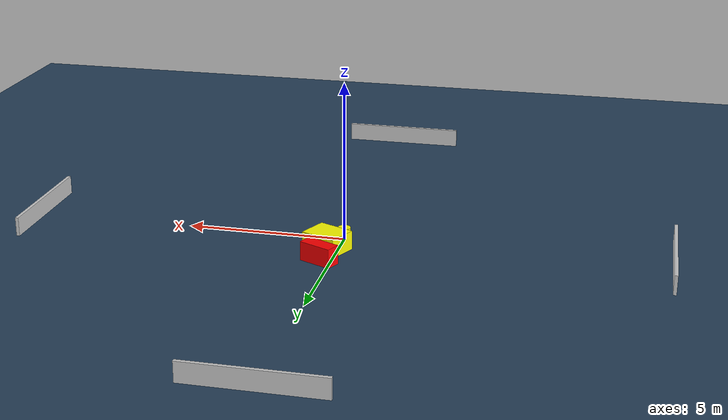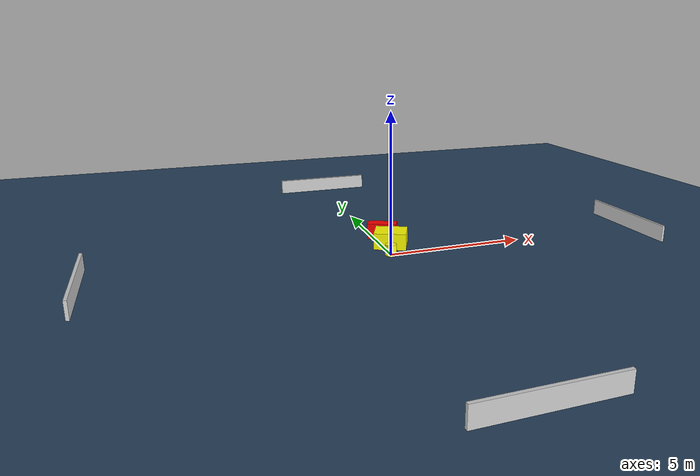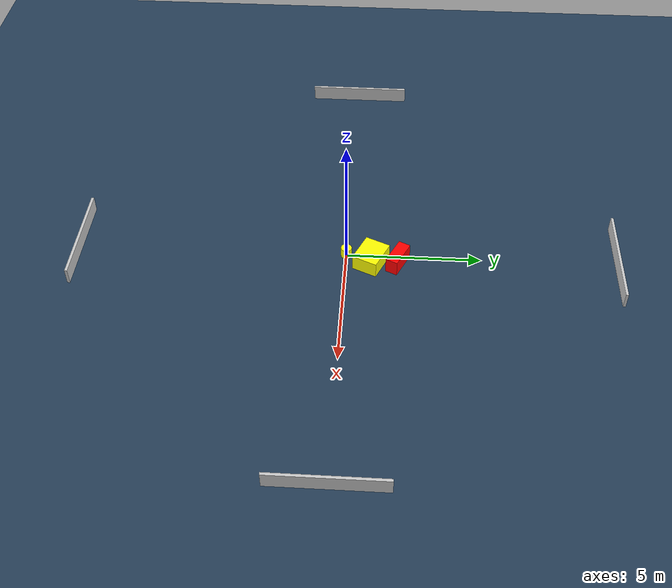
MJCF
<?xml version="1.0" ?>
<mujoco model="generated_environment">
  <option timestep="0.01" integrator="RK4" cone="elliptic"/>
  <default>
    <geom density="1"/>
  </default>
  <asset>
    <texture builtin="gradient" height="3072" name="skybox" rgb1="0.3 0.5 0.7" rgb2="0 0 0" type="skybox" width="512"/>
    <texture builtin="checker" height="300" name="groundplane" rgb1="0.2 0.3 0.4" rgb2="0.1 0.2 0.3" type="2d" width="300"/>
    <material name="groundplane" reflectance="0.2" texrepeat="5 5" texture="groundplane"/>
  </asset>
  <worldbody>
    <light dir="0 0 -1" directional="true" pos="0 0 1.5"/>
    <geom condim="3" friction="0.5 0.005 0.001" material="groundplane" name="floor" pos="0 0 0" size="0 0 0.05" type="plane"/>
    <body name="walls">
      <geom name="wall_1" condim="4" pos="-10.0 0.0 0.3" rgba="0.800000011920929 0.800000011920929 0.800000011920929 1.0" size="0.05 2.0 0.3" type="box"/>
      <geom name="wall_2" condim="4" pos="10.0 0.0 0.3" rgba="0.800000011920929 0.800000011920929 0.800000011920929 1.0" size="0.05 2.0 0.3" type="box"/>
      <geom name="wall_3" condim="4" pos="0.0 -10.0 0.3" rgba="0.800000011920929 0.800000011920929 0.800000011920929 1.0" size="2.0 0.05 0.3" type="box"/>
      <geom name="wall_4" condim="4" pos="0.0 10.0 0.3" rgba="0.800000011920929 0.800000011920929 0.800000011920929 1.0" size="2.0 0.05 0.3" type="box"/>
    </body>
    <body name="robot">
      <joint name="joint_x" type="slide" pos="0 0 0" axis="1 0 0"/>
      <joint name="joint_y" type="slide" pos="0 0 0" axis="0 1 0"/>
      <geom name="robot" type="cylinder" pos="0.0 0.0 0.2" size="0.2 0.2 0.0" mass="5.0" friction="1.0 0.005 0.0001" condim="4" rgba="1.0 1.0 0.0 1.0"/>
    </body>
    <body name="obstacle_1_movable">
      <geom name="obstacle_1_movable" condim="4" pos="0.32320964490429355 0.9300811299396603 0.3" euler="0 0 65.7825037409166" friction="0.0 0.005 0.001" rgba="1.0 1.0 0.0 1.0" size="0.4796876080346878 0.5804592367335084 0.3" type="box" mass="0.1"/>
      <joint type="free"/>
    </body>
    <body name="obstacle_2_static">
      <geom name="obstacle_2_static" condim="4" pos="0.33592972466162707 1.9176784850258384 0.3" euler="0 0 244.57120813083222" friction="0.0 0.005 0.001" rgba="1.0 0.0 0.0 1.0" size="0.2294975506232304 0.5398320862955606 0.3" type="box"/>
    </body>
  </worldbody>
  <actuator>
    <motor name="actuator_x" joint="joint_x" gear="1" ctrlrange="-1 1"/>
    <motor name="actuator_y" joint="joint_y" gear="1" ctrlrange="-1 1"/>
  </actuator>
</mujoco>
